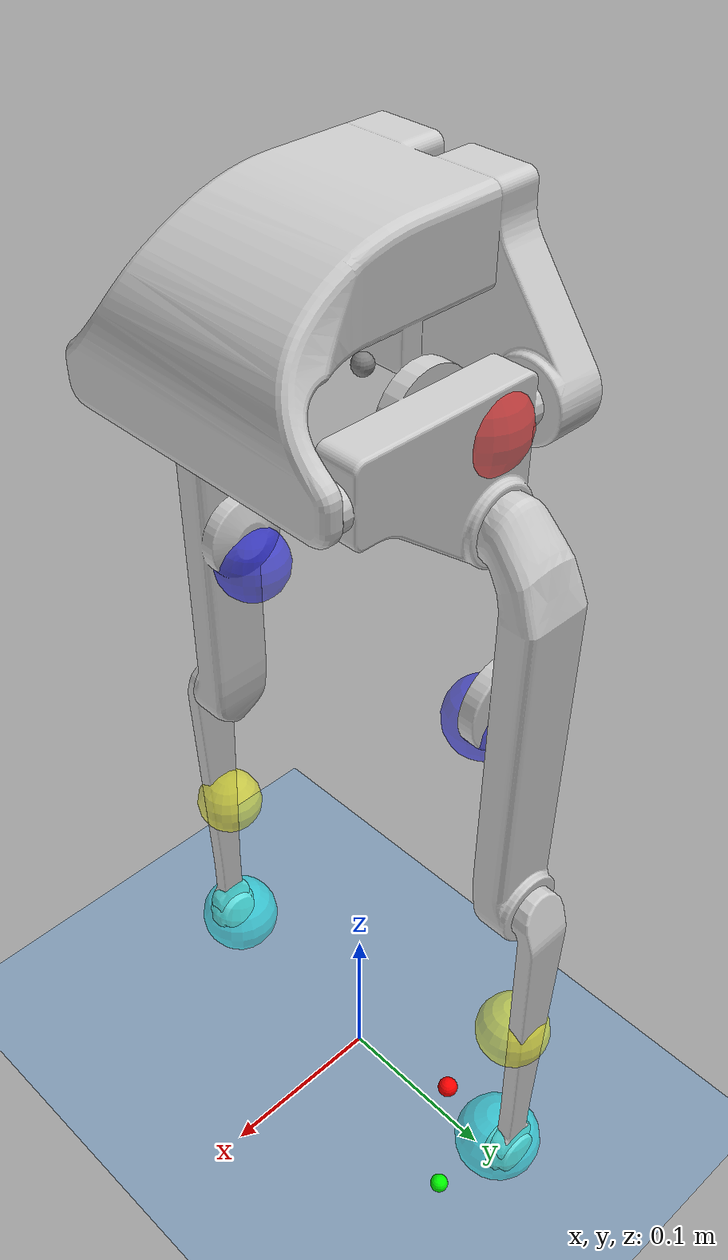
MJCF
<mujoco model="bolt_bipedal_lunar">
    <compiler angle="radian" meshdir="./meshes/bolt_meshes/"/>
    <size nconmax="100"/>
    <option gravity='0 0 -1.62' iterations='50' solver='Newton' timestep='0.002'/>

    <default>
        <geom contype="0" conaffinity="0" friction="0.6 0.3 0.3" rgba="0.5 0.6 0.7 1" margin="0.001" group="0"/>
        <light castshadow="false" diffuse="1 1 1"/>
        <position kp="50" forcelimited="true" ctrllimited="true" forcerange="-33.5 33.5"/>
        <camera fovy="60"/>
        <joint damping="2" armature="0.01" frictionloss="0.2" />

        <default class="hip_abd_limited">
            <joint axis="1 0 0" damping="1" range="-0.12 0.12"/>
            <position ctrllimited="true" ctrlrange="-0.12 0.12"/>
        </default>

        <default class="hip">
            <joint axis="1 0 0" damping="1" range="-1.0472 1.0472"/>
            <position ctrllimited="true" ctrlrange="-1.0472 1.0472"/>
        </default>

        <default class="thigh">
            <joint axis="0 1 0" damping="1" range="-1.563225 2.06706" ref="-0.5"/>
            <position ctrllimited="true" ctrlrange="-1.563225 2.06706"/>
        </default>

        <default class="calf">
            <joint axis="0 1 0" damping="1" range="-0.92271 0.962242" ref="1.0"/>
            <position ctrllimited="true" ctrlrange="-0.92271 0.962242"/>
        </default>

    </default>

    <asset>
        <texture type='skybox' builtin='gradient' width='128' height='128' rgb1='0.4 0.6 0.8' rgb2='0 0 0'/>
        <texture name='plane' type='2d' builtin='checker' rgb1='0.2 0.2 0.2' rgb2='0.3 0.3 0.3' width='512' height='512'/>
        <material name='plane' reflectance='0.0' texture='plane' texrepeat='1 1' texuniform='true'/>
        <mesh name="bolt_body" file="bolt_body.stl"/>
        <mesh name="bolt_hip_fe_left_side" file="bolt_hip_fe_left_side.stl"/>
        <mesh name="upper_leg_200mm_left_side" file="upper_leg_200mm_left_side.stl"/>
        <mesh name="lower_leg_200mm_left_side" file="lower_leg_200mm_left_side.stl"/>
        <mesh name="bolt_foot" file="bolt_foot.stl"/>
        <mesh name="bolt_hip_fe_right_side" file="bolt_hip_fe_right_side.stl"/>
        <mesh name="upper_leg_200mm_right_side" file="upper_leg_200mm_right_side.stl"/>
        <mesh name="lower_leg_200mm_right_side" file="lower_leg_200mm_right_side.stl"/>
    </asset>

    <visual>
        <rgba com="0.502 1.0 0 0.5" contactforce="0.98 0.4 0.4 0.7" contactpoint="1.0 1.0 0.6 0.4"/>
        <scale com="0.2" forcewidth="0.035" contactwidth="0.10" contactheight="0.04"/>
    </visual>

    <worldbody>
        <geom name='floor' pos='0 0 0' size='100 10 .125' type='plane' material='plane' condim='3' contype='1' conaffinity='1'/> <!-- Changes x pos from 0.001 to 0 -->
        <camera name="track" mode="trackcom" pos="0 -4 1" xyaxes="1 0 0 0 0 1"/>
        <light mode='trackcom' pos='0 0 5' dir='0 0 -1'/>
        <light directional='true' pos='0 0 3' dir='0 0 -1' diffuse='0.2 0.2 0.2' specular='0 0 0'/>
        <body name="torso" pos="0 0 0.474">
            <inertial pos="0 0 0" mass="0.1" diaginertia="0.002 0.0015 0.0025"/>
            <camera name="chase_back" pos="-0.8 0 0.35" euler="0 250 0"/>
            <site name="torso"/>
            <joint name="root" type="free" pos="0 0 0" damping="0.1"/>
            <geom type="mesh" mesh="bolt_body" rgba="0.8 0.8 0.8 1" contype="0" conaffinity="0" group="1" quat="1 0 0 0"/> <!-- Removed mass-->

            <!-- LEFT LEG -->
            <body name="FL_SHOULDER" pos="0 0.0636 0">
                <site name="FL_hip_site" pos="0 0 0" size="0.02" rgba="1 0 0 0.5"/>
                <inertial pos="0.0170826 -0.00446892 -0.0109583"
                        quat="0.380445 0.573263 0.68117 0.250275"
                        mass="0.02167"
                        diaginertia="0.000140999 0.000103321 5.85997e-05"/>
                <joint class="hip_abd_limited" name="FL_HAA"/>
                <geom type="mesh" mesh="bolt_hip_fe_left_side" rgba="0.8 0.8 0.8 1"/>

                <body name="FL_UPPER_LEG" pos="0 0.0145 -0.0386">
                    <site name="FL_thigh_site" pos="0 0 -0.1" size="0.02" rgba="0 0 1 0.5"/>
                    <inertial pos="1.377e-05 0.0193585 -0.118707"
                            quat="0.705243 -0.0424536 0.0423607 0.706424"
                            mass="0.02167"
                            diaginertia="0.000417563 0.00041107 2.46069e-05"/>
                    <joint class="thigh" name="FL_HFE"/>
                    <geom type="mesh" mesh="upper_leg_200mm_left_side" rgba="0.8 0.8 0.8 1"/>

                    <body name="FL_LOWER_LEG" pos="0 0.0374 -0.2">
                        <site name="FL_knee_site" pos="0 0 -0.1" size="0.02" rgba="1 1 0 0.5"/>
                        <!-- Temporary: yardstick near left shin -->
                        <site name="yard_top"  pos="0.05 0 -0.10" size="0.005" rgba="1 0 0 1"/>
                        <site name="yard_bot"  pos="0.05 0 -0.20" size="0.005" rgba="0 1 0 1"/>

                        <inertial pos="0 0.00836601 -0.116186"
                                quat="0.707082 -0.00588079 0.00588079 0.707082"
                                mass="0.0167"
                                diaginertia="0.00011713 0.000116139 2.69836e-06"/>
                        <joint class="calf" name="FL_KFE"/>
                        <geom type="mesh" mesh="lower_leg_200mm_left_side" rgba="0.8 0.8 0.8 1"/>
                        <geom pos="0 0.008 -0.21" type="mesh" mesh="bolt_foot" rgba="0.8 0.8 0.8 1" friction="1 0.8 0.01" contype="0" conaffinity="0"/>
                        <geom name="FL_foot_col" type="capsule" fromto="0 0 -0.19  0 0 -0.21" size="0.015"
                                rgba="0 0 0 0" friction="1 0.8 0.01" contype="1" conaffinity="1"/> <!-- Added collision geom for foot -->
                        <site name="FL_foot_site" pos="0 0 -0.21" size="0.025" rgba="0 1 1 0.5"/>
                    </body>
                </body>
            </body>

            <!-- RIGHT LEG -->
            <body name="FR_SHOULDER" pos="0 -0.0636 0">
                <site name="FR_hip_site" pos="0 0 0" size="0.02" rgba="1 0 0 0.5"/>
                <inertial pos="0.0170823 0.00447099 -0.0109585"
                        quat="0.250376 0.681095 0.573344 0.380393"
                        mass="0.02167"
                        diaginertia="0.000141003 0.000103316 5.8591e-05"/>
                <joint class="hip_abd_limited" name="FR_HAA"/>
                <geom type="mesh" mesh="bolt_hip_fe_right_side" rgba="0.8 0.8 0.8 1"/>

                <body name="FR_UPPER_LEG" pos="0 -0.0145 -0.0386">
                    <site name="FR_thigh_site" pos="0 0 -0.1" size="0.02" rgba="0 0 1 0.5"/>
                    <inertial pos="-1.377e-05 -0.0193585 -0.118707"
                            quat="0.705243 0.0424536 -0.0423607 0.706424"
                            mass="0.02167"
                            diaginertia="0.000417563 0.00041107 2.46069e-05"/>
                    <joint class="thigh" name="FR_HFE"/>
                    <geom type="mesh" mesh="upper_leg_200mm_right_side" rgba="0.8 0.8 0.8 1"/>

                    <body name="FR_LOWER_LEG" pos="0 -0.0374 -0.2">
                        <site name="FR_knee_site" pos="0 0 -0.1" size="0.02" rgba="1 1 0 0.5"/>
                        <inertial pos="0 -0.00836601 -0.116186"
                                quat="0.707082 0.00588079 -0.00588079 0.707082"
                                mass="0.0167"
                                diaginertia="0.00011713 0.000116139 2.69836e-06"/>
                        <joint class="calf" name="FR_KFE"/>
                        <geom type="mesh" mesh="lower_leg_200mm_right_side" rgba="0.8 0.8 0.8 1"/>
                        <geom pos="0 -0.008 -0.21" type="mesh" mesh="bolt_foot" rgba="0.8 0.8 0.8 1" friction="1 0.8 0.01" contype="0" conaffinity="0"/>
                        <geom name="FR_foot_col" type="capsule" fromto="0 0 -0.19  0 0 -0.21" size="0.015"
                                rgba="0 0 0 0" friction="1 0.8 0.01" contype="1" conaffinity="1"/> <!-- Added collision geom for foot -->
                        <site name="FR_foot_site" pos="0 0 -0.21" size="0.025" rgba="0 1 1 0.5"/>
                    </body>
                </body>
            </body>
        </body>
    </worldbody>

    <actuator>
    <position class= "hip_abd_limited" name="FL_SHOULDER"        joint="FL_HAA"/>
    <position class= "thigh" name="FL_UPPER_LEG"      joint="FL_HFE"/>
    <position class= "calf" name="FL_LOWER_LEG"       joint="FL_KFE"/>
    <position class= "hip_abd_limited" name="FR_SHOULDER"        joint="FR_HAA"/>
    <position class= "thigh" name="FR_UPPER_LEG"      joint="FR_HFE"/>
    <position class= "calf" name="FR_LOWER_LEG"       joint="FR_KFE"/>
    </actuator>

    <sensor>
        <touch name="FL_touch" site="FL_foot_site"/>
        <touch name="FR_touch" site="FR_foot_site"/> <!-- Added sensors for foot contact detection -->
    </sensor>

</mujoco>
